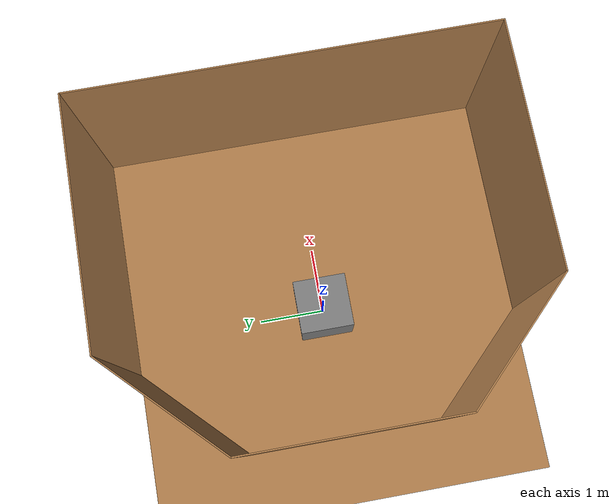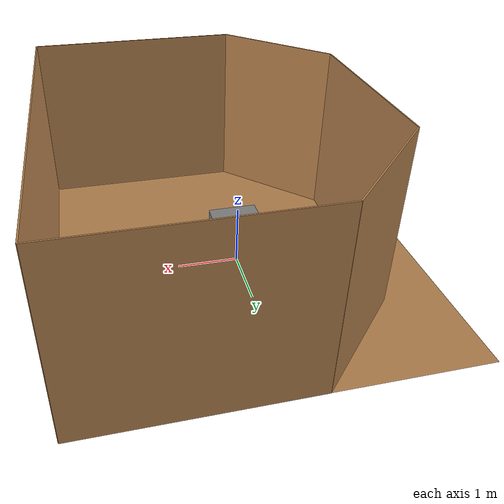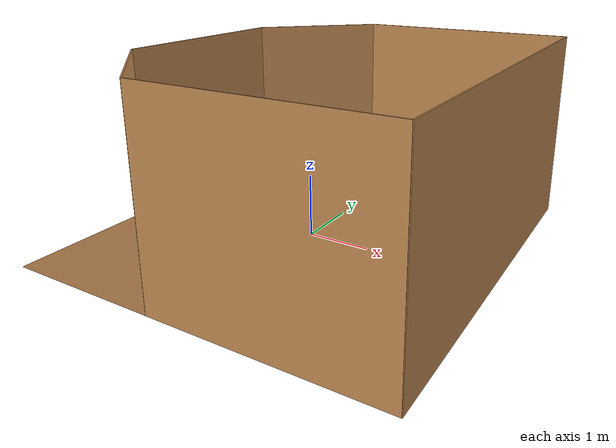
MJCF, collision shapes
<mujoco model="table_arena">
  <asset>
    <texture builtin="gradient" height="256" rgb1=".9 .9 1." rgb2=".2 .3 .4" type="skybox" width="256"/>
    <texture file="../textures/wood-tiles.png" type="2d" name="texplane"/>
    <material name="floorplane" reflectance="0.01" shininess="0.0" specular="0.0" texrepeat="2 2" texture="texplane" texuniform="true"/>
    <!-- ceramic table texture and material-->
    <texture file="../textures/ceramic.png" type="cube" name="tex-ceramic"/>
    <material name="table_ceramic" reflectance="0.0" shininess="0.0" specular="0.2" texrepeat="1 1" texture="tex-ceramic" />
    <!-- steel legs -->
    <texture file="../textures/steel-brushed.png" type="cube" name="tex-steel-brushed"/>
    <material name="table_legs_metal" reflectance="0.8" shininess="0.8" texrepeat="1 1" texture="tex-steel-brushed" />
    <!-- plaster walls -->
    <texture file="../textures/light-wood.png" type="2d" name="lightwood"/>
    <texture file="../textures/light-gray-plaster.png" type="2d" name="tex-light-gray-plaster"/>
    <material name="walls_mat" reflectance="0.0" shininess="0.1" specular="0.1" texrepeat="3 3" texture="lightwood" texuniform="true" />
    <!-- added table texture and material for domain randomization -->
    <texture  name="textable" builtin="flat" height="512" width="512" rgb1="0.5 0.5 0.5" rgb2="0.5 0.5 0.5"/>
    <material name="table_mat" texture="textable" />

    <material name="AluGreen" specular="0.9" shininess="0.1" rgba="0.05 0.51 0.54 1.0"/>

    <texture file="../textures/steel-brushed.png" type="2d" name="steel-brushed"/>
    <material name="socket" reflectance="0.0" shininess="0.1" specular="0.1" texrepeat="3 3" texture="steel-brushed" texuniform="true" />
    <material name="black" specular="1" shininess="0.5" reflectance="1" emission="0" rgba="0.2 0.2 0.2 1"/>

    <mesh file="meshes/table.obj" name="table_vis"/>

  </asset>
  <worldbody>
    <!-- Floor -->
    <geom condim="3" group="1" material="floorplane" name="floor" pos="0 0 0" size="3 3 .125" type="plane"/>
    <!-- Walls (visual only) -->
    <geom pos="-1.25 2.25 1.5" quat="0.6532815 0.6532815 0.2705981 0.2705981" size="1.06 1.5 0.01" type="box" conaffinity="0" contype="0" group="1" name="wall_leftcorner_visual" material="walls_mat"/>
    <geom pos="-1.25 -2.25 1.5" quat="0.6532815 0.6532815 -0.2705981 -0.2705981" size="1.06 1.5 0.01" type="box" conaffinity="0" contype="0" group="1" name="wall_rightcorner_visual" material="walls_mat"/>
    <geom pos="1.25 3 1.5" quat="0.7071 0.7071 0 0" size="1.75 1.5 0.01" type="box" conaffinity="0" contype="0" group="1" name="wall_left_visual" material="walls_mat"/>
    <geom pos="1.25 -3 1.5" quat="0.7071 -0.7071 0 0" size="1.75 1.5 0.01" type="box" conaffinity="0" contype="0" group="1" name="wall_right_visual" material="walls_mat"/>
    <geom pos="-2 0 1.5" quat="0.5 0.5 0.5 0.5" size="1.5 1.5 0.01" type="box" conaffinity="0" contype="0" group="1" name="wall_rear_visual" material="walls_mat"/>
    <geom pos="3 0 1.5" quat="0.5 0.5 -0.5 -0.5" size="3 1.5 0.01" type="box" conaffinity="0" contype="0" group="1" name="wall_front_visual" material="walls_mat"/>
    <!-- Table body -->
    <body name="table" pos="0 0 0.4">
      <geom pos="0 0 0" size="0.4 0.4 0.4" type="box" group="0" name="table_collision" friction="1 0.005 0.0001"/>
      <geom pos="0 0 0.025" mesh="table_vis" type="mesh" conaffinity="0" contype="0" group="1" name="table_visual" material="AluGreen"/>
      <site pos="0 0 0.4" name="table_top" size="0.001 0.001 0.001" rgba="0 0 0 0"/>

    </body>

    <light diffuse=".8 .8 .8" pos="1.0 1.0 1.5" dir="-0.2 -0.2 -1" specular="0.4 0.3 0.3" directional="true" castshadow="false"/>
    <!-- front view -->
    <camera mode="fixed" name="frontview" pos="0.633 -0.016 1.074" xyaxes="0.013 1.000 0.000 -0.315 0.004 0.949"/>
    <!-- bird view -->
    <camera mode="fixed" name="birdview" pos="-0.031 0.292 1.563" xyaxes="-0.624 -0.781 0.000 0.365 -0.291 0.884"/>
    <!-- agent view -->
    <camera mode="fixed" name="agentview" pos="-1.260 0 2.660" xyaxes="-0.003 -1.000 -0.000 0.801 -0.003 0.598"/>

    <!-- side view -->
    <camera mode="fixed" name="sideview" pos="-0.036 -2.0 1.5" xyaxes="0.999 -0.039 -0.000 0.008 0.211 0.977" />

  </worldbody>
</mujoco>
